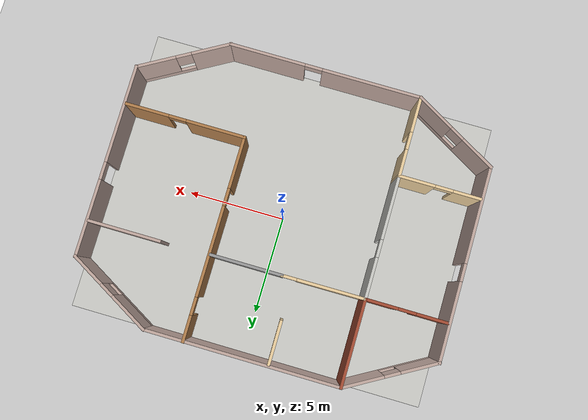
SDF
<sdf version="1.6">
 <world name="default">
  <light name="sun" type="directional">
   <pose>0 0 10 0 -0 0</pose>
   <diffuse>0.8 0.8 0.8 1</diffuse>
   <specular>0.1 0.1 0.1 1</specular>
   <attenuation>
    <range>1000</range>
    <constant>0.9</constant>
    <linear>0.01</linear>
    <quadratic>0.001</quadratic>
   </attenuation>
   <direction>-0.5 0.5 -1</direction>
  </light>
  <model name="ground_plane">
   <static>1</static>
   <link name="link">
    <collision name="collision">
     <geometry><plane><normal>0 0 1</normal><size>100 100</size></plane></geometry>
     <surface><friction><ode><mu>100</mu><mu2>50</mu2></ode></friction></surface>
    </collision>
    <visual name="visual">
     <cast_shadows>0</cast_shadows>
     <geometry><plane><normal>0 0 1</normal><size>100 100</size></plane></geometry>
     <material>
      <script><uri>file://media/materials/scripts/gazebo.material</uri><name>Gazebo/Grey</name></script>
     </material>
    </visual>
   </link>
  </model>
  <gravity>0 0 -9.8</gravity>
  <magnetic_field>6e-06 2.3e-05 -4.2e-05</magnetic_field>
  <atmosphere type="adiabatic"/>
  <physics name="default_physics" default="0" type="ode">
   <max_step_size>0.001</max_step_size>
   <real_time_factor>1</real_time_factor>
   <real_time_update_rate>1000</real_time_update_rate>
  </physics>
  <scene><ambient>0.4 0.4 0.4 1</ambient><background>0.7 0.7 0.7 1</background><shadows>1</shadows></scene>
  <spherical_coordinates>
   <surface_model>EARTH_WGS84</surface_model>
   <latitude_deg>0</latitude_deg>
   <longitude_deg>0</longitude_deg>
   <elevation>0</elevation>
   <heading_deg>0</heading_deg>
  </spherical_coordinates>
  <model name="Pentagon">
   <pose>-0.054068 -0.158533 0 0 -0 0</pose>
   <link name="Floor_16">
    <collision name="Floor_16_Collision">
     <geometry><box><size>18.4553 14.9049 0.1</size></box></geometry>
     <pose>0 0 0.05 0 -0 0</pose>
    </collision>
    <visual name="Floor_16_Visual">
     <pose>0 0 0.05 0 -0 0</pose>
     <geometry><box><size>18.4553 14.9049 0.1</size></box></geometry>
     <material>
      <script><uri>file://media/materials/scripts/gazebo.material</uri><name>Gazebo/CeilingTiled</name></script>
      <ambient>1 1 1 1</ambient>
     </material>
    </visual>
    <pose>1e-06 0 0 0 -0 0</pose>
   </link>
   <link name="Wall_22">
    <pose>-9.12522 0 0 0 0 -1.5708</pose>
    <visual name="Wall_22_Visual_0">
     <pose>-2.94929 0 1.25 0 -0 0</pose>
     <geometry><box><size>4.10142 0.15 2.5</size></box></geometry>
     <material>
      <script><uri>file://media/materials/scripts/gazebo.material</uri><name>Gazebo/Grey</name></script>
      <ambient>0.760784 0.662745 0.627451 1</ambient>
     </material>
    </visual>
    <collision name="Wall_22_Collision_0">
     <geometry><box><size>4.10142 0.15 2.5</size></box></geometry>
     <pose>-2.94929 0 1.25 0 -0 0</pose>
    </collision>
    <visual name="Wall_22_Visual_1">
     <pose>2.50071 0 1.25 0 -0 0</pose>
     <geometry><box><size>4.99857 0.15 2.5</size></box></geometry>
     <material>
      <script><uri>file://media/materials/scripts/gazebo.material</uri><name>Gazebo/Grey</name></script>
      <ambient>0.760784 0.662745 0.627451 1</ambient>
     </material>
    </visual>
    <collision name="Wall_22_Collision_1">
     <geometry><box><size>4.99857 0.15 2.5</size></box></geometry>
     <pose>2.50071 0 1.25 0 -0 0</pose>
    </collision>
    <visual name="Wall_22_Visual_2">
     <pose>-0.448575 0 2.25 0 -0 0</pose>
     <geometry><box><size>0.9 0.15 0.5</size></box></geometry>
     <material>
      <script><uri>file://media/materials/scripts/gazebo.material</uri><name>Gazebo/Grey</name></script>
      <ambient>0.760784 0.662745 0.627451 1</ambient>
     </material>
    </visual>
    <collision name="Wall_22_Collision_2">
     <geometry><box><size>0.9 0.15 0.5</size></box></geometry>
     <pose>-0.448575 0 2.25 0 -0 0</pose>
    </collision>
   </link>
   <link name="Wall_24">
    <pose>-7.02511 -6.1375 0 0 0 -0.523599</pose>
    <visual name="Wall_24_Visual_0">
     <pose>-1.50611 0 1.25 0 -0 0</pose>
     <geometry><box><size>1.98778 0.15 2.5</size></box></geometry>
     <material>
      <script><uri>file://media/materials/scripts/gazebo.material</uri><name>Gazebo/Grey</name></script>
      <ambient>0.760784 0.662745 0.627451 1</ambient>
     </material>
    </visual>
    <collision name="Wall_24_Collision_0">
     <geometry><box><size>1.98778 0.15 2.5</size></box></geometry>
     <pose>-1.50611 0 1.25 0 -0 0</pose>
    </collision>
    <visual name="Wall_24_Visual_1">
     <pose>0.993891 0 0.25 0 -0 0</pose>
     <geometry><box><size>3.01222 0.15 0.5</size></box></geometry>
     <material>
      <script><uri>file://media/materials/scripts/gazebo.material</uri><name>Gazebo/Grey</name></script>
      <ambient>0.760784 0.662745 0.627451 1</ambient>
     </material>
    </visual>
    <collision name="Wall_24_Collision_1">
     <geometry><box><size>3.01222 0.15 0.5</size></box></geometry>
     <pose>0.993891 0 0.25 0 -0 0</pose>
    </collision>
    <visual name="Wall_24_Visual_2">
     <pose>1.39389 0 1.5 0 -0 0</pose>
     <geometry><box><size>2.21222 0.15 2</size></box></geometry>
     <material>
      <script><uri>file://media/materials/scripts/gazebo.material</uri><name>Gazebo/Grey</name></script>
      <ambient>0.760784 0.662745 0.627451 1</ambient>
     </material>
    </visual>
    <collision name="Wall_24_Collision_2">
     <geometry><box><size>2.21222 0.15 2</size></box></geometry>
     <pose>1.39389 0 1.5 0 -0 0</pose>
    </collision>
    <visual name="Wall_24_Visual_3">
     <pose>-0.112218 0 1.9 0 -0 0</pose>
     <geometry><box><size>0.8 0.15 1.2</size></box></geometry>
     <material>
      <script><uri>file://media/materials/scripts/gazebo.material</uri><name>Gazebo/Grey</name></script>
      <ambient>0.760784 0.662745 0.627451 1</ambient>
     </material>
    </visual>
    <collision name="Wall_24_Collision_3">
     <geometry><box><size>0.8 0.15 1.2</size></box></geometry>
     <pose>-0.112218 0 1.9 0 -0 0</pose>
    </collision>
   </link>
   <link name="Wall_25">
    <pose>1e-06 -7.35 0 0 -0 0</pose>
    <visual name="Wall_25_Visual_0">
     <pose>-2.41987 0 1.25 0 -0 0</pose>
     <geometry><box><size>5.16027 0.15 2.5</size></box></geometry>
     <material>
      <script><uri>file://media/materials/scripts/gazebo.material</uri><name>Gazebo/Grey</name></script>
      <ambient>0.760784 0.662745 0.627451 1</ambient>
     </material>
    </visual>
    <collision name="Wall_25_Collision_0">
     <geometry><box><size>5.16027 0.15 2.5</size></box></geometry>
     <pose>-2.41987 0 1.25 0 -0 0</pose>
    </collision>
    <visual name="Wall_25_Visual_1">
     <pose>3.03013 0 1.25 0 -0 0</pose>
     <geometry><box><size>3.93973 0.15 2.5</size></box></geometry>
     <material>
      <script><uri>file://media/materials/scripts/gazebo.material</uri><name>Gazebo/Grey</name></script>
      <ambient>0.760784 0.662745 0.627451 1</ambient>
     </material>
    </visual>
    <collision name="Wall_25_Collision_1">
     <geometry><box><size>3.93973 0.15 2.5</size></box></geometry>
     <pose>3.03013 0 1.25 0 -0 0</pose>
    </collision>
    <visual name="Wall_25_Visual_2">
     <pose>0.610269 0 2.25 0 -0 0</pose>
     <geometry><box><size>0.9 0.15 0.5</size></box></geometry>
     <material>
      <script><uri>file://media/materials/scripts/gazebo.material</uri><name>Gazebo/Grey</name></script>
      <ambient>0.760784 0.662745 0.627451 1</ambient>
     </material>
    </visual>
    <collision name="Wall_25_Collision_2">
     <geometry><box><size>0.9 0.15 0.5</size></box></geometry>
     <pose>0.610269 0 2.25 0 -0 0</pose>
    </collision>
   </link>
   <link name="Wall_26">
    <pose>7.02511 -6.1375 0 0 -0 0.523599</pose>
    <visual name="Wall_26_Visual_0">
     <pose>-1.44732 0 1.25 0 -0 0</pose>
     <geometry><box><size>2.10536 0.15 2.5</size></box></geometry>
     <material>
      <script><uri>file://media/materials/scripts/gazebo.material</uri><name>Gazebo/Grey</name></script>
      <ambient>0.760784 0.662745 0.627451 1</ambient>
     </material>
    </visual>
    <collision name="Wall_26_Collision_0">
     <geometry><box><size>2.10536 0.15 2.5</size></box></geometry>
     <pose>-1.44732 0 1.25 0 -0 0</pose>
    </collision>
    <visual name="Wall_26_Visual_1">
     <pose>1.05268 0 0.25 0 -0 0</pose>
     <geometry><box><size>2.89464 0.15 0.5</size></box></geometry>
     <material>
      <script><uri>file://media/materials/scripts/gazebo.material</uri><name>Gazebo/Grey</name></script>
      <ambient>0.760784 0.662745 0.627451 1</ambient>
     </material>
    </visual>
    <collision name="Wall_26_Collision_1">
     <geometry><box><size>2.89464 0.15 0.5</size></box></geometry>
     <pose>1.05268 0 0.25 0 -0 0</pose>
    </collision>
    <visual name="Wall_26_Visual_2">
     <pose>1.45268 0 1.5 0 -0 0</pose>
     <geometry><box><size>2.09464 0.15 2</size></box></geometry>
     <material>
      <script><uri>file://media/materials/scripts/gazebo.material</uri><name>Gazebo/Grey</name></script>
      <ambient>0.760784 0.662745 0.627451 1</ambient>
     </material>
    </visual>
    <collision name="Wall_26_Collision_2">
     <geometry><box><size>2.09464 0.15 2</size></box></geometry>
     <pose>1.45268 0 1.5 0 -0 0</pose>
    </collision>
    <visual name="Wall_26_Visual_3">
     <pose>0.005362 0 1.9 0 -0 0</pose>
     <geometry><box><size>0.8 0.15 1.2</size></box></geometry>
     <material>
      <script><uri>file://media/materials/scripts/gazebo.material</uri><name>Gazebo/Grey</name></script>
      <ambient>0.760784 0.662745 0.627451 1</ambient>
     </material>
    </visual>
    <collision name="Wall_26_Collision_3">
     <geometry><box><size>0.8 0.15 1.2</size></box></geometry>
     <pose>0.005362 0 1.9 0 -0 0</pose>
    </collision>
   </link>
   <link name="Wall_27">
    <pose>9.12522 0 0 0 -0 1.5708</pose>
    <visual name="Wall_27_Visual_0">
     <pose>-2.45419 0 1.25 0 -0 0</pose>
     <geometry><box><size>5.09162 0.15 2.5</size></box></geometry>
     <material>
      <script><uri>file://media/materials/scripts/gazebo.material</uri><name>Gazebo/Grey</name></script>
      <ambient>0.760784 0.662745 0.627451 1</ambient>
     </material>
    </visual>
    <collision name="Wall_27_Collision_0">
     <geometry><box><size>5.09162 0.15 2.5</size></box></geometry>
     <pose>-2.45419 0 1.25 0 -0 0</pose>
    </collision>
    <visual name="Wall_27_Visual_1">
     <pose>2.99581 0 1.25 0 -0 0</pose>
     <geometry><box><size>4.00838 0.15 2.5</size></box></geometry>
     <material>
      <script><uri>file://media/materials/scripts/gazebo.material</uri><name>Gazebo/Grey</name></script>
      <ambient>0.760784 0.662745 0.627451 1</ambient>
     </material>
    </visual>
    <collision name="Wall_27_Collision_1">
     <geometry><box><size>4.00838 0.15 2.5</size></box></geometry>
     <pose>2.99581 0 1.25 0 -0 0</pose>
    </collision>
    <visual name="Wall_27_Visual_2">
     <pose>0.541623 0 2.25 0 -0 0</pose>
     <geometry><box><size>0.9 0.15 0.5</size></box></geometry>
     <material>
      <script><uri>file://media/materials/scripts/gazebo.material</uri><name>Gazebo/Grey</name></script>
      <ambient>0.760784 0.662745 0.627451 1</ambient>
     </material>
    </visual>
    <collision name="Wall_27_Collision_2">
     <geometry><box><size>0.9 0.15 0.5</size></box></geometry>
     <pose>0.541623 0 2.25 0 -0 0</pose>
    </collision>
   </link>
   <link name="Wall_28">
    <pose>7.02511 6.1375 0 0 -0 2.61799</pose>
    <visual name="Wall_28_Visual_0">
     <pose>-1.53931 0 1.25 0 -0 0</pose>
     <geometry><box><size>1.92137 0.15 2.5</size></box></geometry>
     <material>
      <script><uri>file://media/materials/scripts/gazebo.material</uri><name>Gazebo/Grey</name></script>
      <ambient>0.760784 0.662745 0.627451 1</ambient>
     </material>
    </visual>
    <collision name="Wall_28_Collision_0">
     <geometry><box><size>1.92137 0.15 2.5</size></box></geometry>
     <pose>-1.53931 0 1.25 0 -0 0</pose>
    </collision>
    <visual name="Wall_28_Visual_1">
     <pose>0.960687 0 0.25 0 -0 0</pose>
     <geometry><box><size>3.07863 0.15 0.5</size></box></geometry>
     <material>
      <script><uri>file://media/materials/scripts/gazebo.material</uri><name>Gazebo/Grey</name></script>
      <ambient>0.760784 0.662745 0.627451 1</ambient>
     </material>
    </visual>
    <collision name="Wall_28_Collision_1">
     <geometry><box><size>3.07863 0.15 0.5</size></box></geometry>
     <pose>0.960687 0 0.25 0 -0 0</pose>
    </collision>
    <visual name="Wall_28_Visual_2">
     <pose>1.36069 0 1.5 0 -0 0</pose>
     <geometry><box><size>2.27863 0.15 2</size></box></geometry>
     <material>
      <script><uri>file://media/materials/scripts/gazebo.material</uri><name>Gazebo/Grey</name></script>
      <ambient>0.760784 0.662745 0.627451 1</ambient>
     </material>
    </visual>
    <collision name="Wall_28_Collision_2">
     <geometry><box><size>2.27863 0.15 2</size></box></geometry>
     <pose>1.36069 0 1.5 0 -0 0</pose>
    </collision>
    <visual name="Wall_28_Visual_3">
     <pose>-0.178626 0 1.9 0 -0 0</pose>
     <geometry><box><size>0.8 0.15 1.2</size></box></geometry>
     <material>
      <script><uri>file://media/materials/scripts/gazebo.material</uri><name>Gazebo/Grey</name></script>
      <ambient>0.760784 0.662745 0.627451 1</ambient>
     </material>
    </visual>
    <collision name="Wall_28_Collision_3">
     <geometry><box><size>0.8 0.15 1.2</size></box></geometry>
     <pose>-0.178626 0 1.9 0 -0 0</pose>
    </collision>
   </link>
   <link name="Wall_29">
    <collision name="Wall_29_Collision">
     <geometry><box><size>10 0.15 2.5</size></box></geometry>
     <pose>0 0 1.25 0 -0 0</pose>
    </collision>
    <visual name="Wall_29_Visual">
     <pose>0 0 1.25 0 -0 0</pose>
     <geometry><box><size>10 0.15 2.5</size></box></geometry>
     <material>
      <script><uri>file://media/materials/scripts/gazebo.material</uri><name>Gazebo/Grey</name></script>
      <ambient>0.760784 0.662745 0.627451 1</ambient>
     </material>
    </visual>
    <pose>1e-06 7.35 0 0 -0 3.14159</pose>
   </link>
   <link name="Wall_30">
    <pose>-7.02511 6.1375 0 0 0 -2.61799</pose>
    <visual name="Wall_30_Visual_0">
     <pose>-1.39719 0 1.25 0 -0 0</pose>
     <geometry><box><size>2.20562 0.15 2.5</size></box></geometry>
     <material>
      <script><uri>file://media/materials/scripts/gazebo.material</uri><name>Gazebo/Grey</name></script>
      <ambient>0.760784 0.662745 0.627451 1</ambient>
     </material>
    </visual>
    <collision name="Wall_30_Collision_0">
     <geometry><box><size>2.20562 0.15 2.5</size></box></geometry>
     <pose>-1.39719 0 1.25 0 -0 0</pose>
    </collision>
    <visual name="Wall_30_Visual_1">
     <pose>1.10281 0 0.25 0 -0 0</pose>
     <geometry><box><size>2.79438 0.15 0.5</size></box></geometry>
     <material>
      <script><uri>file://media/materials/scripts/gazebo.material</uri><name>Gazebo/Grey</name></script>
      <ambient>0.760784 0.662745 0.627451 1</ambient>
     </material>
    </visual>
    <collision name="Wall_30_Collision_1">
     <geometry><box><size>2.79438 0.15 0.5</size></box></geometry>
     <pose>1.10281 0 0.25 0 -0 0</pose>
    </collision>
    <visual name="Wall_30_Visual_2">
     <pose>1.50281 0 1.5 0 -0 0</pose>
     <geometry><box><size>1.99438 0.15 2</size></box></geometry>
     <material>
      <script><uri>file://media/materials/scripts/gazebo.material</uri><name>Gazebo/Grey</name></script>
      <ambient>0.760784 0.662745 0.627451 1</ambient>
     </material>
    </visual>
    <collision name="Wall_30_Collision_2">
     <geometry><box><size>1.99438 0.15 2</size></box></geometry>
     <pose>1.50281 0 1.5 0 -0 0</pose>
    </collision>
    <visual name="Wall_30_Visual_3">
     <pose>0.10562 0 1.9 0 -0 0</pose>
     <geometry><box><size>0.8 0.15 1.2</size></box></geometry>
     <material>
      <script><uri>file://media/materials/scripts/gazebo.material</uri><name>Gazebo/Grey</name></script>
      <ambient>0.760784 0.662745 0.627451 1</ambient>
     </material>
    </visual>
    <collision name="Wall_30_Collision_3">
     <geometry><box><size>0.8 0.15 1.2</size></box></geometry>
     <pose>0.10562 0 1.9 0 -0 0</pose>
    </collision>
   </link>
   <link name="Wall_32">
    <collision name="Wall_32_Collision">
     <geometry><box><size>4.5 0.15 2.5</size></box></geometry>
     <pose>0 0 1.25 0 -0 0</pose>
    </collision>
    <visual name="Wall_32_Visual">
     <pose>0 0 1.25 0 -0 0</pose>
     <geometry><box><size>4.5 0.15 2.5</size></box></geometry>
     <material>
      <script><uri>file://media/materials/scripts/gazebo.material</uri><name>Gazebo/Bricks</name></script>
      <ambient>1 1 1 1</ambient>
     </material>
    </visual>
    <pose>-4.925 5.175 0 0 0 -1.5708</pose>
   </link>
   <link name="Wall_33">
    <pose>-6.975 3 0 0 -0 3.14159</pose>
    <visual name="Wall_33_Visual_0">
     <pose>-1.27049 0 1.25 0 -0 0</pose>
     <geometry><box><size>1.70902 0.15 2.5</size></box></geometry>
     <material>
      <script><uri>file://media/materials/scripts/gazebo.material</uri><name>Gazebo/Bricks</name></script>
      <ambient>1 1 1 1</ambient>
     </material>
    </visual>
    <collision name="Wall_33_Collision_0">
     <geometry><box><size>1.70902 0.15 2.5</size></box></geometry>
     <pose>-1.27049 0 1.25 0 -0 0</pose>
    </collision>
    <visual name="Wall_33_Visual_1">
     <pose>1.30451 0 1.25 0 -0 0</pose>
     <geometry><box><size>1.64098 0.15 2.5</size></box></geometry>
     <material>
      <script><uri>file://media/materials/scripts/gazebo.material</uri><name>Gazebo/Bricks</name></script>
      <ambient>1 1 1 1</ambient>
     </material>
    </visual>
    <collision name="Wall_33_Collision_1">
     <geometry><box><size>1.64098 0.15 2.5</size></box></geometry>
     <pose>1.30451 0 1.25 0 -0 0</pose>
    </collision>
    <visual name="Wall_33_Visual_2">
     <pose>0.034019 0 2.25 0 -0 0</pose>
     <geometry><box><size>0.9 0.15 0.5</size></box></geometry>
     <material>
      <script><uri>file://media/materials/scripts/gazebo.material</uri><name>Gazebo/Bricks</name></script>
      <ambient>1 1 1 1</ambient>
     </material>
    </visual>
    <collision name="Wall_33_Collision_2">
     <geometry><box><size>0.9 0.15 0.5</size></box></geometry>
     <pose>0.034019 0 2.25 0 -0 0</pose>
    </collision>
   </link>
   <link name="Wall_35">
    <pose>2.92425 2.19223 0 0 0 -1.5708</pose>
    <visual name="Wall_35_Visual_0">
     <pose>-4.56341 0 1.25 0 -0 0</pose>
     <geometry><box><size>1.37318 0.15 2.5</size></box></geometry>
     <material>
      <script><uri>file://media/materials/scripts/gazebo.material</uri><name>Gazebo/Wood</name></script>
      <ambient>1 1 1 1</ambient>
     </material>
    </visual>
    <collision name="Wall_35_Collision_0">
     <geometry><box><size>1.37318 0.15 2.5</size></box></geometry>
     <pose>-4.56341 0 1.25 0 -0 0</pose>
    </collision>
    <visual name="Wall_35_Visual_1">
     <pose>-0.6737 0 1.25 0 -0 0</pose>
     <geometry><box><size>4.60624 0.15 2.5</size></box></geometry>
     <material>
      <script><uri>file://media/materials/scripts/gazebo.material</uri><name>Gazebo/Wood</name></script>
      <ambient>1 1 1 1</ambient>
     </material>
    </visual>
    <collision name="Wall_35_Collision_1">
     <geometry><box><size>4.60624 0.15 2.5</size></box></geometry>
     <pose>-0.6737 0 1.25 0 -0 0</pose>
    </collision>
    <visual name="Wall_35_Visual_2">
     <pose>3.88971 0 1.25 0 -0 0</pose>
     <geometry><box><size>2.72058 0.15 2.5</size></box></geometry>
     <material>
      <script><uri>file://media/materials/scripts/gazebo.material</uri><name>Gazebo/Wood</name></script>
      <ambient>1 1 1 1</ambient>
     </material>
    </visual>
    <collision name="Wall_35_Collision_2">
     <geometry><box><size>2.72058 0.15 2.5</size></box></geometry>
     <pose>3.88971 0 1.25 0 -0 0</pose>
    </collision>
    <visual name="Wall_35_Visual_3">
     <pose>-3.42682 0 2.25 0 -0 0</pose>
     <geometry><box><size>0.9 0.15 0.5</size></box></geometry>
     <material>
      <script><uri>file://media/materials/scripts/gazebo.material</uri><name>Gazebo/Wood</name></script>
      <ambient>1 1 1 1</ambient>
     </material>
    </visual>
    <collision name="Wall_35_Collision_3">
     <geometry><box><size>0.9 0.15 0.5</size></box></geometry>
     <pose>-3.42682 0 2.25 0 -0 0</pose>
    </collision>
    <visual name="Wall_35_Visual_4">
     <pose>2.07942 0 2.25 0 -0 0</pose>
     <geometry><box><size>0.9 0.15 0.5</size></box></geometry>
     <material>
      <script><uri>file://media/materials/scripts/gazebo.material</uri><name>Gazebo/Wood</name></script>
      <ambient>1 1 1 1</ambient>
     </material>
    </visual>
    <collision name="Wall_35_Collision_4">
     <geometry><box><size>0.9 0.15 0.5</size></box></geometry>
     <pose>2.07942 0 2.25 0 -0 0</pose>
    </collision>
   </link>
   <link name="Wall_36">
    <pose>5.97425 -2.98277 0 0 -0 0</pose>
    <visual name="Wall_36_Visual_0">
     <pose>-1.58415 0 1.25 0 -0 0</pose>
     <geometry><box><size>3.0817 0.15 2.5</size></box></geometry>
     <material>
      <script><uri>file://media/materials/scripts/gazebo.material</uri><name>Gazebo/Wood</name></script>
      <ambient>1 1 1 1</ambient>
     </material>
    </visual>
    <collision name="Wall_36_Collision_0">
     <geometry><box><size>3.0817 0.15 2.5</size></box></geometry>
     <pose>-1.58415 0 1.25 0 -0 0</pose>
    </collision>
    <visual name="Wall_36_Visual_1">
     <pose>1.99085 0 1.25 0 -0 0</pose>
     <geometry><box><size>2.2683 0.15 2.5</size></box></geometry>
     <material>
      <script><uri>file://media/materials/scripts/gazebo.material</uri><name>Gazebo/Wood</name></script>
      <ambient>1 1 1 1</ambient>
     </material>
    </visual>
    <collision name="Wall_36_Collision_1">
     <geometry><box><size>2.2683 0.15 2.5</size></box></geometry>
     <pose>1.99085 0 1.25 0 -0 0</pose>
    </collision>
    <visual name="Wall_36_Visual_2">
     <pose>0.406696 0 2.25 0 -0 0</pose>
     <geometry><box><size>0.9 0.15 0.5</size></box></geometry>
     <material>
      <script><uri>file://media/materials/scripts/gazebo.material</uri><name>Gazebo/Wood</name></script>
      <ambient>1 1 1 1</ambient>
     </material>
    </visual>
    <collision name="Wall_36_Collision_2">
     <geometry><box><size>0.9 0.15 0.5</size></box></geometry>
     <pose>0.406696 0 2.25 0 -0 0</pose>
    </collision>
   </link>
   <link name="Wall_40">
    <pose>-4.925 -5.3 0 0 -0 1.5708</pose>
    <visual name="Wall_40_Visual_0">
     <pose>-1.179 0 1.25 0 -0 0</pose>
     <geometry><box><size>1.89201 0.15 2.5</size></box></geometry>
     <material>
      <script><uri>file://media/materials/scripts/gazebo.material</uri><name>Gazebo/Grey</name></script>
      <ambient>0.921569 0.807843 0.615686 1</ambient>
     </material>
    </visual>
    <collision name="Wall_40_Collision_0">
     <geometry><box><size>1.89201 0.15 2.5</size></box></geometry>
     <pose>-1.179 0 1.25 0 -0 0</pose>
    </collision>
    <visual name="Wall_40_Visual_1">
     <pose>1.396 0 1.25 0 -0 0</pose>
     <geometry><box><size>1.45799 0.15 2.5</size></box></geometry>
     <material>
      <script><uri>file://media/materials/scripts/gazebo.material</uri><name>Gazebo/Grey</name></script>
      <ambient>0.921569 0.807843 0.615686 1</ambient>
     </material>
    </visual>
    <collision name="Wall_40_Collision_1">
     <geometry><box><size>1.45799 0.15 2.5</size></box></geometry>
     <pose>1.396 0 1.25 0 -0 0</pose>
    </collision>
    <visual name="Wall_40_Visual_2">
     <pose>0.21701 0 2.25 0 -0 0</pose>
     <geometry><box><size>0.9 0.15 0.5</size></box></geometry>
     <material>
      <script><uri>file://media/materials/scripts/gazebo.material</uri><name>Gazebo/Grey</name></script>
      <ambient>0.921569 0.807843 0.615686 1</ambient>
     </material>
    </visual>
    <collision name="Wall_40_Collision_2">
     <geometry><box><size>0.9 0.15 0.5</size></box></geometry>
     <pose>0.21701 0 2.25 0 -0 0</pose>
    </collision>
   </link>
   <link name="Wall_41">
    <pose>-6.975 -3.25 0 0 -0 3.14159</pose>
    <visual name="Wall_41_Visual_0">
     <pose>-1.17444 0 1.25 0 -0 0</pose>
     <geometry><box><size>1.90112 0.15 2.5</size></box></geometry>
     <material>
      <script><uri>file://media/materials/scripts/gazebo.material</uri><name>Gazebo/Grey</name></script>
      <ambient>0.921569 0.807843 0.615686 1</ambient>
     </material>
    </visual>
    <collision name="Wall_41_Collision_0">
     <geometry><box><size>1.90112 0.15 2.5</size></box></geometry>
     <pose>-1.17444 0 1.25 0 -0 0</pose>
    </collision>
    <visual name="Wall_41_Visual_1">
     <pose>1.40056 0 1.25 0 -0 0</pose>
     <geometry><box><size>1.44888 0.15 2.5</size></box></geometry>
     <material>
      <script><uri>file://media/materials/scripts/gazebo.material</uri><name>Gazebo/Grey</name></script>
      <ambient>0.921569 0.807843 0.615686 1</ambient>
     </material>
    </visual>
    <collision name="Wall_41_Collision_1">
     <geometry><box><size>1.44888 0.15 2.5</size></box></geometry>
     <pose>1.40056 0 1.25 0 -0 0</pose>
    </collision>
    <visual name="Wall_41_Visual_2">
     <pose>0.22612 0 2.25 0 -0 0</pose>
     <geometry><box><size>0.9 0.15 0.5</size></box></geometry>
     <material>
      <script><uri>file://media/materials/scripts/gazebo.material</uri><name>Gazebo/Grey</name></script>
      <ambient>0.921569 0.807843 0.615686 1</ambient>
     </material>
    </visual>
    <collision name="Wall_41_Collision_2">
     <geometry><box><size>0.9 0.15 0.5</size></box></geometry>
     <pose>0.22612 0 2.25 0 -0 0</pose>
    </collision>
   </link>
   <link name="Wall_43">
    <pose>-4.925 -0.05 0 0 0 -1.5708</pose>
    <visual name="Wall_43_Visual_0">
     <pose>-2.03942 0 1.25 0 -0 0</pose>
     <geometry><box><size>2.17116 0.15 2.5</size></box></geometry>
     <material>
      <script><uri>file://media/materials/scripts/gazebo.material</uri><name>Gazebo/CeilingTiled</name></script>
      <ambient>0.921569 0.807843 0.615686 1</ambient>
     </material>
    </visual>
    <collision name="Wall_43_Collision_0">
     <geometry><box><size>2.17116 0.15 2.5</size></box></geometry>
     <pose>-2.03942 0 1.25 0 -0 0</pose>
    </collision>
    <visual name="Wall_43_Visual_1">
     <pose>1.53558 0 1.25 0 -0 0</pose>
     <geometry><box><size>3.17884 0.15 2.5</size></box></geometry>
     <material>
      <script><uri>file://media/materials/scripts/gazebo.material</uri><name>Gazebo/CeilingTiled</name></script>
      <ambient>0.921569 0.807843 0.615686 1</ambient>
     </material>
    </visual>
    <collision name="Wall_43_Collision_1">
     <geometry><box><size>3.17884 0.15 2.5</size></box></geometry>
     <pose>1.53558 0 1.25 0 -0 0</pose>
    </collision>
    <visual name="Wall_43_Visual_2">
     <pose>-0.503842 0 2.25 0 -0 0</pose>
     <geometry><box><size>0.9 0.15 0.5</size></box></geometry>
     <material>
      <script><uri>file://media/materials/scripts/gazebo.material</uri><name>Gazebo/CeilingTiled</name></script>
      <ambient>0.921569 0.807843 0.615686 1</ambient>
     </material>
    </visual>
    <collision name="Wall_43_Collision_2">
     <geometry><box><size>0.9 0.15 0.5</size></box></geometry>
     <pose>-0.503842 0 2.25 0 -0 0</pose>
    </collision>
   </link>
   <link name="Wall_47">
    <collision name="Wall_47_Collision">
     <geometry><box><size>3.75 0.15 2.5</size></box></geometry>
     <pose>0 0 1.25 0 -0 0</pose>
    </collision>
    <visual name="Wall_47_Visual">
     <pose>0 0 1.25 0 -0 0</pose>
     <geometry><box><size>3.75 0.15 2.5</size></box></geometry>
     <material>
      <script><uri>file://media/materials/scripts/gazebo.material</uri><name>Gazebo/Grey</name></script>
      <ambient>0.760784 0.662745 0.627451 1</ambient>
     </material>
    </visual>
    <pose>7.23264 3.0846 0 0 -0 0</pose>
   </link>
   <link name="Wall_49">
    <collision name="Wall_49_Collision">
     <geometry><box><size>3.75 0.15 2.5</size></box></geometry>
     <pose>0 0 1.25 0 -0 0</pose>
    </collision>
    <visual name="Wall_49_Visual">
     <pose>0 0 1.25 0 -0 0</pose>
     <geometry><box><size>3.75 0.15 2.5</size></box></geometry>
     <material>
      <script><uri>file://media/materials/scripts/gazebo.material</uri><name>Gazebo/Grey</name></script>
      <ambient>1 1 1 1</ambient>
     </material>
    </visual>
    <pose>1.05342 3.02342 0 0 -0 0</pose>
   </link>
   <link name="Wall_55">
    <pose>-2.83579 3.01171 0 0 -0 0.005605</pose>
    <visual name="Wall_55_Visual_0">
     <pose>-0.410924 0 1.25 0 -0 0</pose>
     <geometry><box><size>3.50664 0.15 2.5</size></box></geometry>
     <material>
      <script><uri>file://media/materials/scripts/gazebo.material</uri><name>Gazebo/Grey</name></script>
      <ambient>0.921569 0.807843 0.615686 1</ambient>
     </material>
    </visual>
    <collision name="Wall_55_Collision_0">
     <geometry><box><size>3.50664 0.15 2.5</size></box></geometry>
     <pose>-0.410924 0 1.25 0 -0 0</pose>
    </collision>
    <visual name="Wall_55_Visual_1">
     <pose>1.75332 0 2.25 0 -0 0</pose>
     <geometry><box><size>0.821847 0.15 0.5</size></box></geometry>
     <material>
      <script><uri>file://media/materials/scripts/gazebo.material</uri><name>Gazebo/Grey</name></script>
      <ambient>0.921569 0.807843 0.615686 1</ambient>
     </material>
    </visual>
    <collision name="Wall_55_Collision_1">
     <geometry><box><size>0.821847 0.15 0.5</size></box></geometry>
     <pose>1.75332 0 2.25 0 -0 0</pose>
    </collision>
   </link>
   <link name="Wall_58">
    <collision name="Wall_58_Collision">
     <geometry><box><size>2.25 0.15 2.5</size></box></geometry>
     <pose>0 0 1.25 0 -0 0</pose>
    </collision>
    <visual name="Wall_58_Visual">
     <pose>0 0 1.25 0 -0 0</pose>
     <geometry><box><size>2.25 0.15 2.5</size></box></geometry>
     <material>
      <script><uri>file://media/materials/scripts/gazebo.material</uri><name>Gazebo/Grey</name></script>
      <ambient>0.921569 0.807843 0.615686 1</ambient>
     </material>
    </visual>
    <pose>-1.32445 6.20963 0 0 0 -1.5708</pose>
   </link>
   <static>1</static>
  </model>
 </world>
</sdf>
